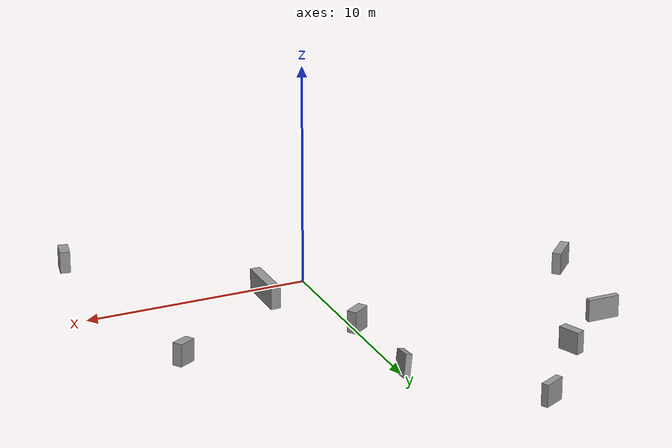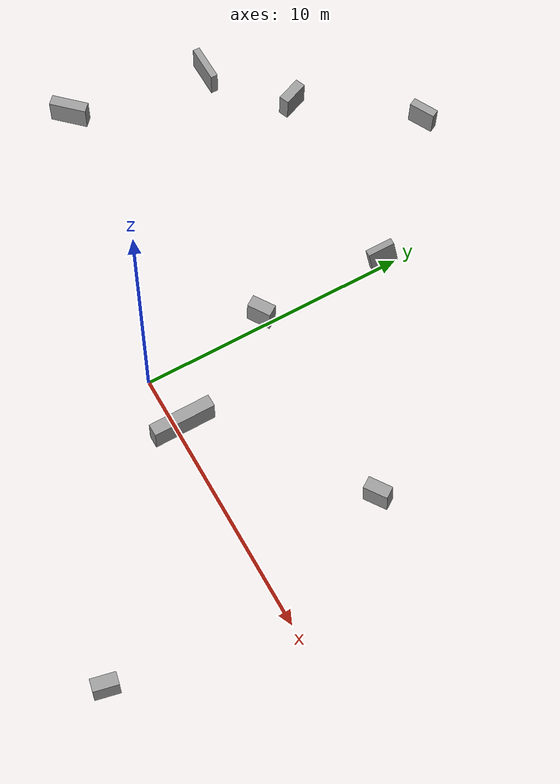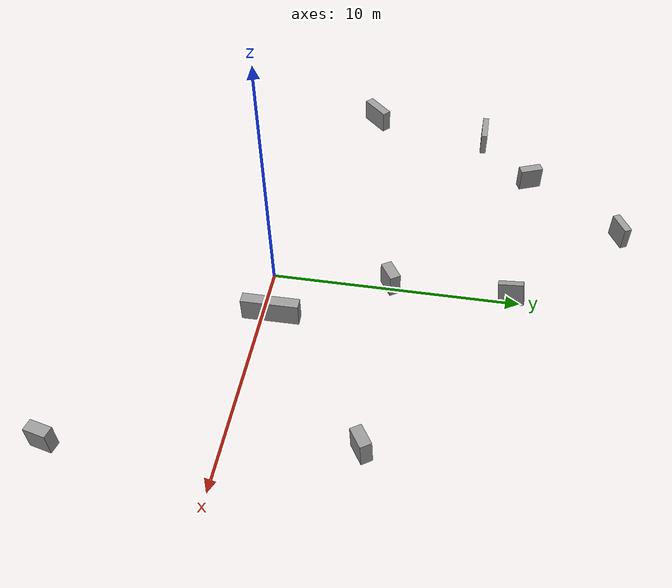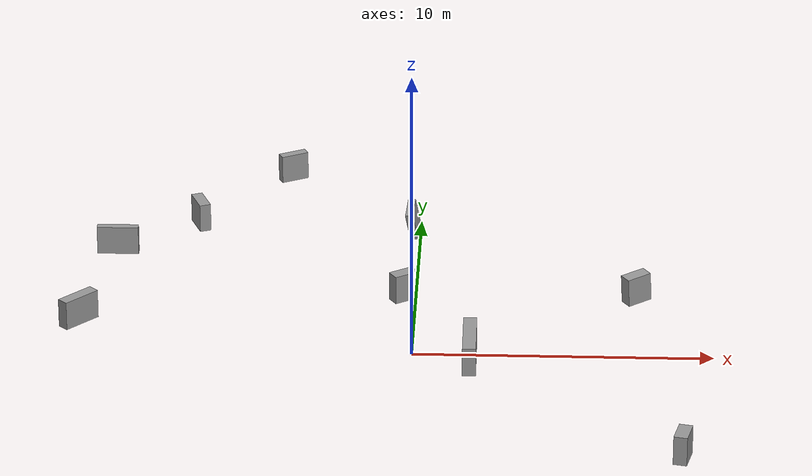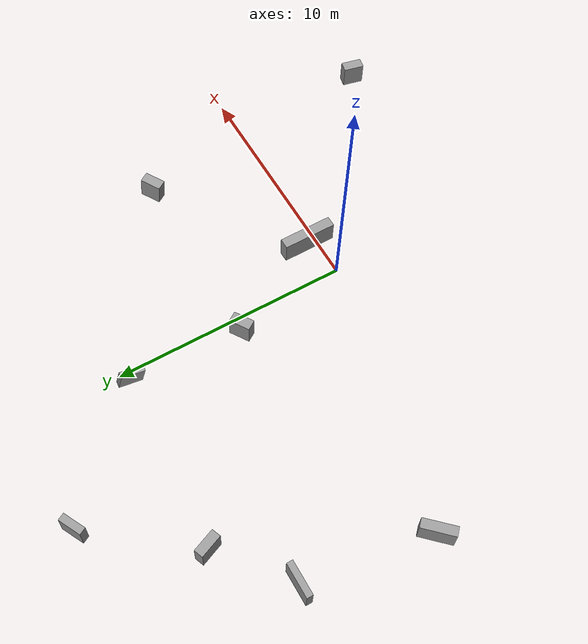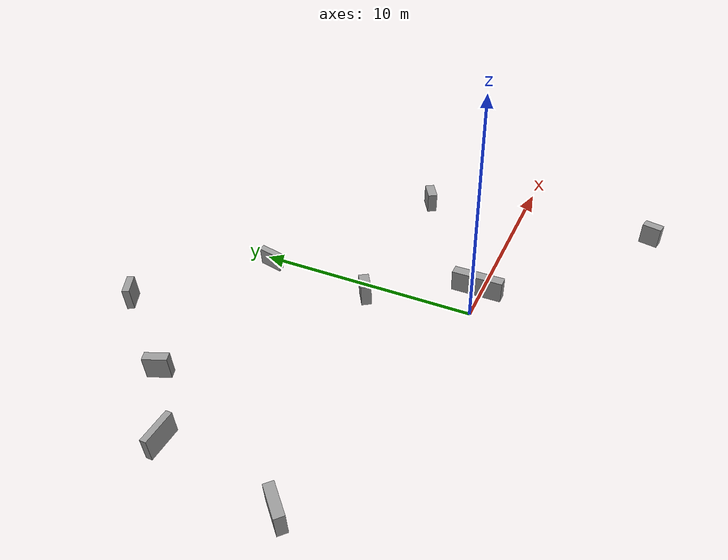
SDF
<sdf version="1.7">
 <world name="default">
  <light name="sun" type="directional">
   <pose>0 0 10 0.9 -0 0</pose>
   <diffuse>0.8 0.8 0.8 1</diffuse>
   <specular>0.2 0.2 0.2 1</specular>
   <attenuation>
    <range>1000</range>
    <constant>0.9</constant>
    <linear>0.01</linear>
    <quadratic>0.001</quadratic>
   </attenuation>
   <direction>-0.3 0.3 -0.9</direction>
   <spot><inner_angle>0</inner_angle><outer_angle>0</outer_angle><falloff>0</falloff></spot>
  </light>
  <gravity>0 0 -9.8</gravity>
  <magnetic_field>6e-06 2.3e-05 -4.2e-05</magnetic_field>
  <atmosphere type="adiabatic"/>
  <physics type="ode">
   <max_step_size>0.001</max_step_size>
   <real_time_factor>1</real_time_factor>
   <real_time_update_rate>1000</real_time_update_rate>
  </physics>
  <scene><ambient>0.4 0.4 0.4 1</ambient><background>0.7 0.7 0.7 1</background><shadows>1</shadows></scene>
  <spherical_coordinates>
   <surface_model>EARTH_WGS84</surface_model>
   <latitude_deg>0</latitude_deg>
   <longitude_deg>0</longitude_deg>
   <elevation>0</elevation>
   <heading_deg>0</heading_deg>
  </spherical_coordinates>
  <model name="unit_box">
   <pose>1.90205 0.302258 0.145461 1.5708 -0 0.006554</pose>
   <link name="link">
    <inertial>
     <mass>1</mass>
     <inertia>
      <ixx>0.166667</ixx>
      <ixy>0</ixy>
      <ixz>0</ixz>
      <iyy>0.166667</iyy>
      <iyz>0</iyz>
      <izz>0.166667</izz>
     </inertia>
    </inertial>
    <collision name="collision"><geometry><box><size>0.451941 1 2.29809</size></box></geometry></collision>
    <visual name="visual">
     <geometry><box><size>0.451941 1 2.29809</size></box></geometry>
     <material>
      <script><name>Gazebo/Grey</name><uri>file://media/materials/scripts/gazebo.material</uri></script>
     </material>
    </visual>
   </link>
  </model>
  <model name="unit_box_clone">
   <pose>-0.445903 4.74568 0.145461 1.5708 -0 -0.995421</pose>
   <link name="link">
    <inertial>
     <mass>1</mass>
     <inertia>
      <ixx>0.166667</ixx>
      <ixy>0</ixy>
      <ixz>0</ixz>
      <iyy>0.166667</iyy>
      <iyz>0</iyz>
      <izz>0.166667</izz>
     </inertia>
    </inertial>
    <collision name="collision"><geometry><box><size>0.451941 1 0.891834</size></box></geometry></collision>
    <visual name="visual">
     <geometry><box><size>0.451941 1 0.891834</size></box></geometry>
     <material>
      <script><name>Gazebo/Grey</name><uri>file://media/materials/scripts/gazebo.material</uri></script>
     </material>
    </visual>
   </link>
  </model>
  <model name="unit_box_clone_clone">
   <pose>7.45738 4.79064 0.182364 1.63861 0.013234 -0.996154</pose>
   <link name="link">
    <inertial>
     <mass>1</mass>
     <inertia>
      <ixx>0.166667</ixx>
      <ixy>0</ixy>
      <ixz>0</ixz>
      <iyy>0.166667</iyy>
      <iyz>0</iyz>
      <izz>0.166667</izz>
     </inertia>
    </inertial>
    <collision name="collision"><geometry><box><size>0.451941 1 0.891834</size></box></geometry></collision>
    <visual name="visual">
     <geometry><box><size>0.451941 1 0.891834</size></box></geometry>
     <material>
      <script><name>Gazebo/Grey</name><uri>file://media/materials/scripts/gazebo.material</uri></script>
     </material>
    </visual>
   </link>
  </model>
  <model name="unit_box_clone_clone_0">
   <pose>8.86553 -6.24245 0.145461 1.5708 -0 2.92313</pose>
   <link name="link">
    <inertial>
     <mass>1</mass>
     <inertia>
      <ixx>0.166667</ixx>
      <ixy>0</ixy>
      <ixz>0</ixz>
      <iyy>0.166667</iyy>
      <iyz>0</iyz>
      <izz>0.166667</izz>
     </inertia>
    </inertial>
    <collision name="collision"><geometry><box><size>0.451941 1 0.891834</size></box></geometry></collision>
    <visual name="visual">
     <geometry><box><size>0.451941 1 0.891834</size></box></geometry>
     <material>
      <script><name>Gazebo/Grey</name><uri>file://media/materials/scripts/gazebo.material</uri></script>
     </material>
    </visual>
   </link>
  </model>
  <model name="unit_box_0">
   <pose>-7.76705 10.1915 0.145461 0 0 -1.1917</pose>
   <link name="link">
    <inertial>
     <mass>1</mass>
     <inertia>
      <ixx>0.166667</ixx>
      <ixy>0</ixy>
      <ixz>0</ixz>
      <iyy>0.166667</iyy>
      <iyz>0</iyz>
      <izz>0.166667</izz>
     </inertia>
    </inertial>
    <collision name="collision"><geometry><box><size>1 0.391555 1</size></box></geometry></collision>
    <visual name="visual">
     <geometry><box><size>1 0.391555 1</size></box></geometry>
     <material>
      <script><name>Gazebo/Grey</name><uri>file://media/materials/scripts/gazebo.material</uri></script>
     </material>
    </visual>
   </link>
  </model>
  <model name="unit_box_1">
   <pose>-10.4873 7.96947 0.145451 1e-06 -0 -5e-06</pose>
   <link name="link">
    <inertial>
     <mass>1</mass>
     <inertia>
      <ixx>0.166667</ixx>
      <ixy>0</ixy>
      <ixz>0</ixz>
      <iyy>0.166667</iyy>
      <iyz>0</iyz>
      <izz>0.166667</izz>
     </inertia>
    </inertial>
    <collision name="collision"><geometry><box><size>1.43014 0.26669 1</size></box></geometry></collision>
    <visual name="visual">
     <geometry><box><size>1.43014 0.26669 1</size></box></geometry>
     <material>
      <script><name>Gazebo/Grey</name><uri>file://media/materials/scripts/gazebo.material</uri></script>
     </material>
    </visual>
   </link>
  </model>
  <model name="unit_box_2">
   <pose>-11.3426 2.64707 0.145458 8e-06 -3e-06 -0.763585</pose>
   <link name="link">
    <inertial>
     <mass>1</mass>
     <inertia>
      <ixx>0.166667</ixx>
      <ixy>0</ixy>
      <ixz>0</ixz>
      <iyy>0.166667</iyy>
      <iyz>0</iyz>
      <izz>0.166667</izz>
     </inertia>
    </inertial>
    <collision name="collision"><geometry><box><size>0.403204 1.3923 1</size></box></geometry></collision>
    <visual name="visual">
     <geometry><box><size>0.403204 1.3923 1</size></box></geometry>
     <material>
      <script><name>Gazebo/Grey</name><uri>file://media/materials/scripts/gazebo.material</uri></script>
     </material>
    </visual>
   </link>
  </model>
  <model name="unit_box_3">
   <pose>-0.302073 9.61822 0.271364 0.162287 0.150686 -1.63766</pose>
   <link name="link">
    <inertial>
     <mass>1</mass>
     <inertia>
      <ixx>0.166667</ixx>
      <ixy>0</ixy>
      <ixz>0</ixz>
      <iyy>0.166667</iyy>
      <iyz>0</iyz>
      <izz>0.166667</izz>
     </inertia>
    </inertial>
    <collision name="collision"><geometry><box><size>1 0.27195 1</size></box></geometry></collision>
    <visual name="visual">
     <geometry><box><size>1 0.27195 1</size></box></geometry>
     <material>
      <script><name>Gazebo/Grey</name><uri>file://media/materials/scripts/gazebo.material</uri></script>
     </material>
    </visual>
   </link>
  </model>
  <model name="unit_box_4">
   <pose>-4.74377 14.1093 0.145458 4e-06 0 -1.09376</pose>
   <link name="link">
    <inertial>
     <mass>1</mass>
     <inertia>
      <ixx>0.166667</ixx>
      <ixy>0</ixy>
      <ixz>0</ixz>
      <iyy>0.166667</iyy>
      <iyz>0</iyz>
      <izz>0.166667</izz>
     </inertia>
    </inertial>
    <collision name="collision"><geometry><box><size>0.31716 1 1</size></box></geometry></collision>
    <visual name="visual">
     <geometry><box><size>0.31716 1 1</size></box></geometry>
     <material>
      <script><name>Gazebo/Grey</name><uri>file://media/materials/scripts/gazebo.material</uri></script>
     </material>
    </visual>
   </link>
  </model>
 </world>
</sdf>
